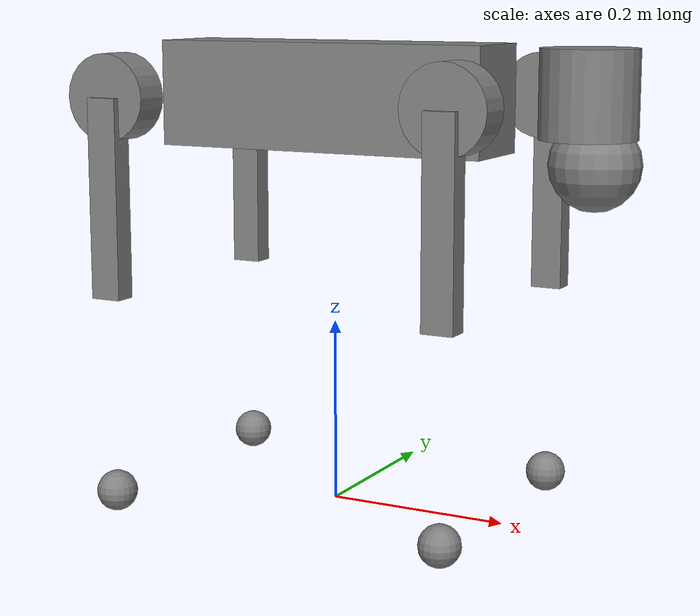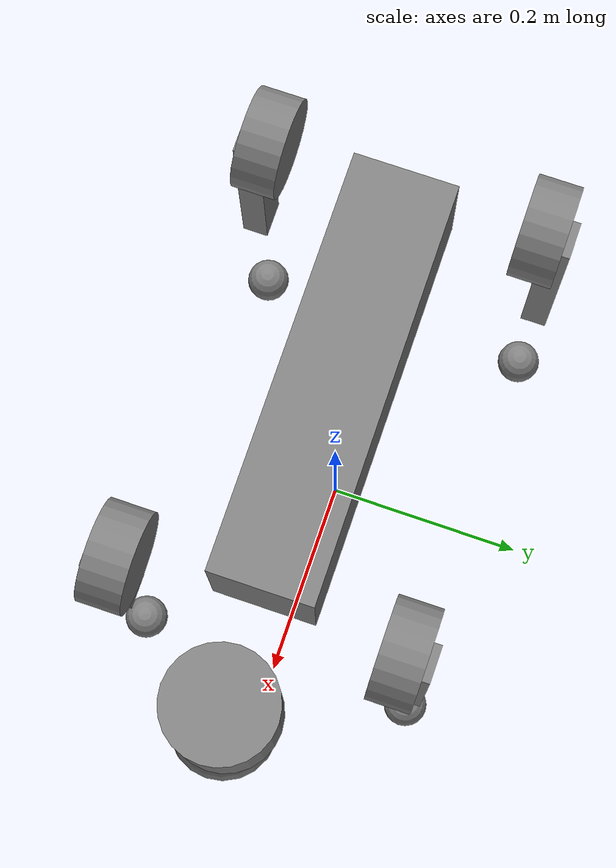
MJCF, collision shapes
<mujoco model="go2">
  <compiler angle="radian" meshdir="assets" autolimits="true" />

  <option timestep="0.002" cone="elliptic" impratio="100" solver="Newton" iterations="50" />

  <default>
    <default class="go2">
      <geom friction="0.6" margin="0.001" condim="1" />
      <joint axis="0 1 0" damping="0.5" armature="0.01" frictionloss="0.2" />

      <default class="haa_joint">
        <joint axis="1 0 0" range="-1.0472 1.0472" />
      </default>
      <default class="hfe_joint">
        <joint range="-1.5708 3.4907" />
      </default>
      <default class="kfe_joint">
        <joint range="-2.7227 -0.83776" />
      </default>

      <default class="visual">
        <geom type="mesh" contype="0" conaffinity="0" group="2" />
      </default>
      <default class="collision">
        <geom group="3" />
        <default class="foot">
          <geom type="sphere" size="0.022" pos="0 0 -0.213" priority="1" condim="6" friction="0.8 0.02 0.01" />
        </default>
      </default>
    </default>
  </default>

  <asset>
    <material name="metal" rgba=".9 .95 .95 1" />
    <material name="black" rgba="0 0 0 1" />
    <material name="white" rgba="1 1 1 1" />
    <material name="gray" rgba="0.671705 0.692426 0.774270 1" />

    <mesh file="base_0.obj" />
    <mesh file="base_1.obj" />
    <mesh file="base_2.obj" />
    <mesh file="base_3.obj" />
    <mesh file="base_4.obj" />
    <mesh file="hip_0.obj" />
    <mesh file="hip_1.obj" />
    <mesh file="thigh_0.obj" />
    <mesh file="thigh_1.obj" />
    <mesh file="thigh_mirror_0.obj" />
    <mesh file="thigh_mirror_1.obj" />
    <mesh file="calf_0.obj" />
    <mesh file="calf_1.obj" />
    <mesh file="calf_mirror_0.obj" />
    <mesh file="calf_mirror_1.obj" />
    <mesh file="foot.obj" />
  </asset>

  <worldbody>
    <body name="base" pos="0 0 0.445" childclass="go2">
      <inertial pos="0.021112 0 -0.005366" quat="-0.000543471 0.713435 -0.00173769 0.700719"
        mass="6.921" diaginertia="0.107027 0.0980771 0.0244531" />
      <freejoint name="root" />

      <geom mesh="base_0" material="black" class="visual" />
      <geom mesh="base_1" material="black" class="visual" />
      <geom mesh="base_2" material="black" class="visual" />
      <geom mesh="base_3" material="white" class="visual" />
      <geom mesh="base_4" material="gray" class="visual" />

      <geom size="0.1881 0.04675 0.057" type="box" class="collision" />
      <geom size="0.05 0.045" pos="0.285 0 0.01" type="cylinder" class="collision" />
      <geom size="0.047" pos="0.293 0 -0.06" class="collision" />

      <site name="imu" pos="-0.02557 0 0.04232" />

      <body name="RF_HIP" pos="0.1934 -0.0465 0">
        <inertial pos="-0.0054 -0.00194 -0.000105" quat="0.498237 0.505462 0.499245 0.497014" mass="0.678" diaginertia="0.00088403 0.000596003 0.000479967" />
        <joint name="RF_HAA" class="haa_joint" />
        <geom mesh="hip_0" material="metal" class="visual" quat="0 1 0 0" />
        <geom mesh="hip_1" material="gray" class="visual" quat="0 1 0 0" />
        <geom size="0.046 0.02" pos="0 -0.08 0" quat="0.707107 0.707107 0 0" type="cylinder" class="collision" />
        <body name="RF_THIGH" pos="0 -0.0955 0">
          <inertial pos="-0.00374 0.0223 -0.0327" quat="0.551623 -0.0200632 0.0847635 0.829533" mass="1.152" diaginertia="0.00594973 0.00584149 0.000878787" />
          <joint name="RF_HFE" class="hfe_joint" />
          <geom mesh="thigh_mirror_0" material="metal" class="visual" />
          <geom mesh="thigh_mirror_1" material="gray" class="visual" />
          <geom size="0.1065 0.01225 0.017" pos="0 0 -0.1065" quat="0.707107 0 0.707107 0" type="box" class="collision" />
          <body name="RF_SHANK" pos="0 0 -0.213">
            <inertial pos="0.00629595 0.000622121 -0.141417" quat="0.703508 -0.00450087 0.00154099 0.710672" mass="0.241352" diaginertia="0.0014901 0.00146356 5.31397e-05" />
            <joint name="RF_KFE" class="kfe_joint" />
            <geom mesh="calf_mirror_0" material="gray" class="visual" />
            <geom mesh="calf_mirror_1" material="black" class="visual" />
            <geom name="RF_FOOT" class="foot" />
            <site name="RF" pos="0 0 -0.213" type="sphere" size="0.023" group="5" />
          </body>
        </body>
      </body>

      <body name="LF_HIP" pos="0.1934 0.0465 0">
        <inertial pos="-0.0054 0.00194 -0.000105" quat="0.497014 0.499245 0.505462 0.498237" mass="0.678" diaginertia="0.00088403 0.000596003 0.000479967" />
        <joint name="LF_HAA" class="haa_joint" />
        <geom mesh="hip_0" material="metal" class="visual" />
        <geom mesh="hip_1" material="gray" class="visual" />
        <geom size="0.046 0.02" pos="0 0.08 0" quat="1 1 0 0" type="cylinder" class="collision" />
        <body name="LF_THIGH" pos="0 0.0955 0">
          <inertial pos="-0.00374 -0.0223 -0.0327" quat="0.829533 0.0847635 -0.0200632 0.551623" mass="1.152" diaginertia="0.00594973 0.00584149 0.000878787" />
          <joint name="LF_HFE" class="hfe_joint" />
          <geom mesh="thigh_0" material="metal" class="visual" />
          <geom mesh="thigh_1" material="gray" class="visual" />
          <geom size="0.1065 0.01225 0.017" pos="0 0 -0.1065" quat="0.707107 0 0.707107 0" type="box" class="collision" />
          <body name="LF_SHANK" pos="0 0 -0.213">
            <inertial pos="0.00629595 -0.000622121 -0.141417" quat="0.710672 0.00154099 -0.00450087 0.703508" mass="0.241352" diaginertia="0.0014901 0.00146356 5.31397e-05" />
            <joint name="LF_KFE" class="kfe_joint" />
            <geom mesh="calf_0" material="gray" class="visual" />
            <geom mesh="calf_1" material="black" class="visual" />
            <geom name="LF_FOOT" class="foot" />
            <site name="LF" pos="0 0 -0.213" type="sphere" size="0.023" group="5" />
          </body>
        </body>
      </body>

      <body name="RH_HIP" pos="-0.1934 -0.0465 0">
        <inertial pos="0.0054 -0.00194 -0.000105" quat="0.499245 0.497014 0.498237 0.505462" mass="0.678" diaginertia="0.00088403 0.000596003 0.000479967" />
        <joint name="RH_HAA" class="haa_joint" />
        <geom mesh="hip_0" material="metal" class="visual" quat="0 0 0 1" />
        <geom mesh="hip_1" material="gray" class="visual" quat="0 0 0 1" />
        <geom size="0.046 0.02" pos="0 -0.08 0" quat="0.707107 0.707107 0 0" type="cylinder" class="collision" />
        <body name="RH_THIGH" pos="0 -0.0955 0">
          <inertial pos="-0.00374 0.0223 -0.0327" quat="0.551623 -0.0200632 0.0847635 0.829533" mass="1.152" diaginertia="0.00594973 0.00584149 0.000878787" />
          <joint name="RH_HFE" class="hfe_joint" />
          <geom mesh="thigh_mirror_0" material="metal" class="visual" />
          <geom mesh="thigh_mirror_1" material="gray" class="visual" />
          <geom size="0.1065 0.01225 0.017" pos="0 0 -0.1065" quat="0.707107 0 0.707107 0" type="box" class="collision" />
          <body name="RH_SHANK" pos="0 0 -0.213">
            <inertial pos="0.00629595 0.000622121 -0.141417" quat="0.703508 -0.00450087 0.00154099 0.710672" mass="0.241352" diaginertia="0.0014901 0.00146356 5.31397e-05" />
            <joint name="RH_KFE" class="kfe_joint" />
            <geom mesh="calf_mirror_0" material="gray" class="visual" />
            <geom mesh="calf_mirror_1" material="black" class="visual" />
            <geom name="RH_FOOT" class="foot" />
            <site name="RH" pos="0 0 -0.213" type="sphere" size="0.023" group="5" />
          </body>
        </body>
      </body>

      <body name="LH_HIP" pos="-0.1934 0.0465 0">
        <inertial pos="0.0054 0.00194 -0.000105" quat="0.505462 0.498237 0.497014 0.499245" mass="0.678" diaginertia="0.00088403 0.000596003 0.000479967" />
        <joint name="LH_HAA" class="haa_joint" />
        <geom mesh="hip_0" material="metal" class="visual" quat="0 0 1 0" />
        <geom mesh="hip_1" material="gray" class="visual" quat="0 0 1 0" />
        <geom size="0.046 0.02" pos="0 0.08 0" quat="0.707107 0.707107 0 0" type="cylinder" class="collision" />
        <body name="LH_THIGH" pos="0 0.0955 0">
          <inertial pos="-0.00374 -0.0223 -0.0327" quat="0.829533 0.0847635 -0.0200632 0.551623" mass="1.152" diaginertia="0.00594973 0.00584149 0.000878787" />
          <joint name="LH_HFE" class="hfe_joint" />
          <geom mesh="thigh_0" material="metal" class="visual" />
          <geom mesh="thigh_1" material="gray" class="visual" />
          <geom size="0.1065 0.01225 0.017" pos="0 0 -0.1065" quat="0.707107 0 0.707107 0" type="box" class="collision" />
          <body name="LH_SHANK" pos="0 0 -0.213">
            <inertial pos="0.00629595 -0.000622121 -0.141417" quat="0.710672 0.00154099 -0.00450087 0.703508" mass="0.241352" diaginertia="0.0014901 0.00146356 5.31397e-05" />
            <joint name="LH_KFE" class="kfe_joint" />
            <geom mesh="calf_0" material="gray" class="visual" />
            <geom mesh="calf_1" material="black" class="visual" />
            <geom name="LH_FOOT" class="foot" />
            <site name="LH" pos="0 0 -0.213" type="sphere" size="0.023" group="5" />
          </body>
        </body>
      </body>
    </body>
  </worldbody>

  <contact>
    <exclude body1="base" body2="LF_THIGH" />
    <exclude body1="base" body2="RF_THIGH" />
    <exclude body1="base" body2="LH_THIGH" />
    <exclude body1="base" body2="RH_THIGH" />
  </contact>

  <actuator>
    <motor name="LF_HAA" joint="LF_HAA" ctrllimited="true" ctrlrange="-23.7 23.7" />
    <motor name="LF_HFE" joint="LF_HFE" ctrllimited="true" ctrlrange="-23.7 23.7" />
    <motor name="LF_KFE" joint="LF_KFE" ctrllimited="true" ctrlrange="-45.43 45.43" />
    <motor name="RF_HAA" joint="RF_HAA" ctrllimited="true" ctrlrange="-23.7 23.7" />
    <motor name="RF_HFE" joint="RF_HFE" ctrllimited="true" ctrlrange="-23.7 23.7" />
    <motor name="RF_KFE" joint="RF_KFE" ctrllimited="true" ctrlrange="-45.43 45.43" />
    <motor name="LH_HAA" joint="LH_HAA" ctrllimited="true" ctrlrange="-23.7 23.7" />
    <motor name="LH_HFE" joint="LH_HFE" ctrllimited="true" ctrlrange="-23.7 23.7" />
    <motor name="LH_KFE" joint="LH_KFE" ctrllimited="true" ctrlrange="-45.43 45.43" />
    <motor name="RH_HAA" joint="RH_HAA" ctrllimited="true" ctrlrange="-23.7 23.7" />
    <motor name="RH_HFE" joint="RH_HFE" ctrllimited="true" ctrlrange="-23.7 23.7" />
    <motor name="RH_KFE" joint="RH_KFE" ctrllimited="true" ctrlrange="-45.43 45.43" />
  </actuator>

  <sensor>
    <framequat name="orientation" objtype="site" objname="imu" />
    <gyro name="angular-velocity" site="imu" />
    <accelerometer name="linear-acceleration" site="imu" />
    <framepos name="position" objtype="site" objname="imu" />
    <framelinvel name="linear-velocity" objtype="site" objname="imu" />

    <jointpos name="LF_HAA_pos" joint="LF_HAA" />
    <jointpos name="LF_HFE_pos" joint="LF_HFE" />
    <jointpos name="LF_KFE_pos" joint="LF_KFE" />
    <jointpos name="RF_HAA_pos" joint="RF_HAA" />
    <jointpos name="RF_HFE_pos" joint="RF_HFE" />
    <jointpos name="RF_KFE_pos" joint="RF_KFE" />
    <jointpos name="LH_HAA_pos" joint="LH_HAA" />
    <jointpos name="LH_HFE_pos" joint="LH_HFE" />
    <jointpos name="LH_KFE_pos" joint="LH_KFE" />
    <jointpos name="RH_HAA_pos" joint="RH_HAA" />
    <jointpos name="RH_HFE_pos" joint="RH_HFE" />
    <jointpos name="RH_KFE_pos" joint="RH_KFE" />
  </sensor>

  <keyframe>
    <key name="home" qpos="0 0 0.35 1 0 0 0 0 0.9 -1.8 0 0.9 -1.8 0 0.9 -1.8 0 0.9 -1.8"
      ctrl="0 0 0 0 0 0 0 0 0 0 0 0" />
  </keyframe>
</mujoco>
